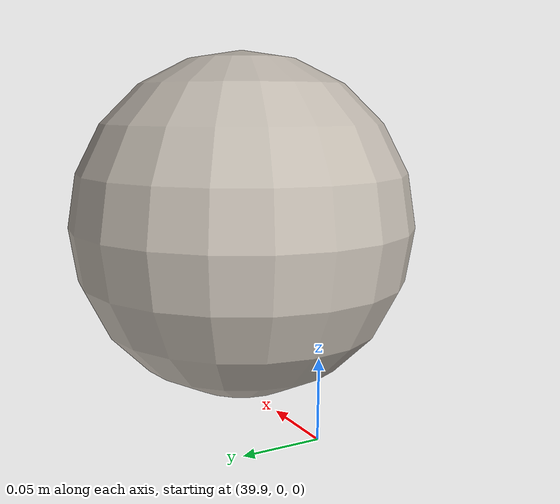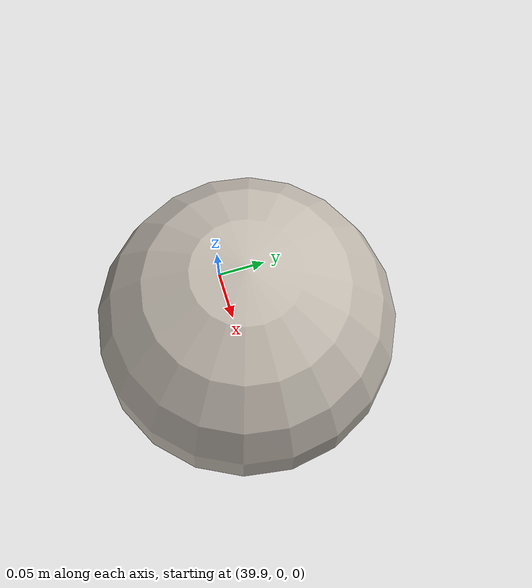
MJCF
<?xml version="1.0" encoding="UTF-8"?>
<mujoco model="soccer_ball">
  <asset>
    <texture name="soccer_ball" type="cube"
      fileup="soccer_ball/up.png"
      filedown="soccer_ball/down.png"
      fileleft="soccer_ball/left.png"
      fileright="soccer_ball/right.png"
      filefront="soccer_ball/front.png"
      fileback="soccer_ball/back.png"/>
    <material name="soccer_mat" texture="soccer_ball" shininess="0.4" specular="0.4"/>
  </asset>

  <worldbody>
    <!-- FIFA regulation parameters for a size 5 ball -->
    <body name="soccer_ball" pos="40 0 0.117">
      <freejoint/>
      <geom
        name="ball_geom"
        type="sphere"
        size="0.117"
        mass="0.45"
        condim="6"
        priority="1"
        friction="0.7 0.05 0.04"
        solref="0.02 0.4"
        material="soccer_mat"/>
    </body>
  </worldbody>

</mujoco>
